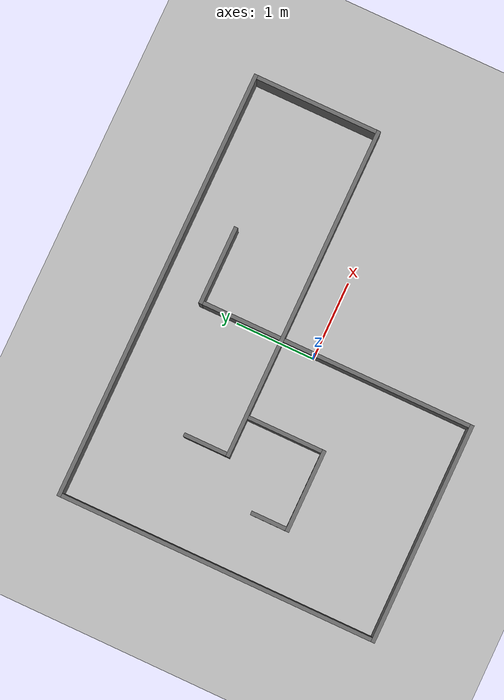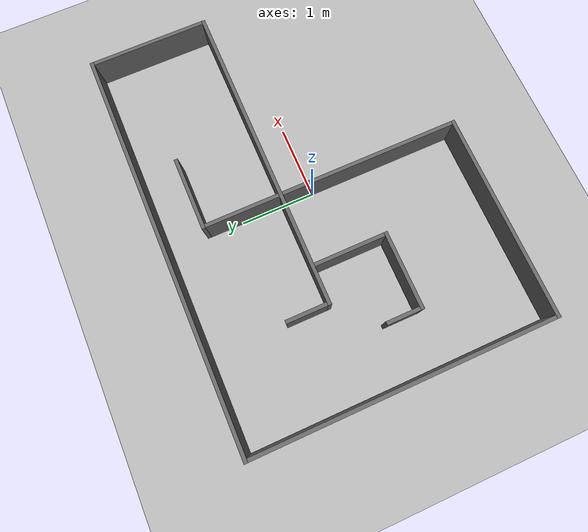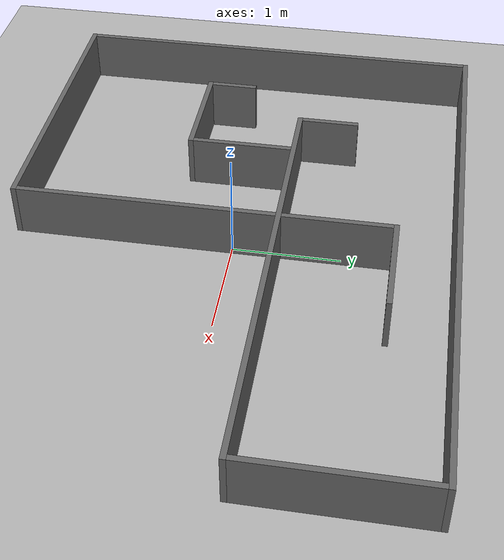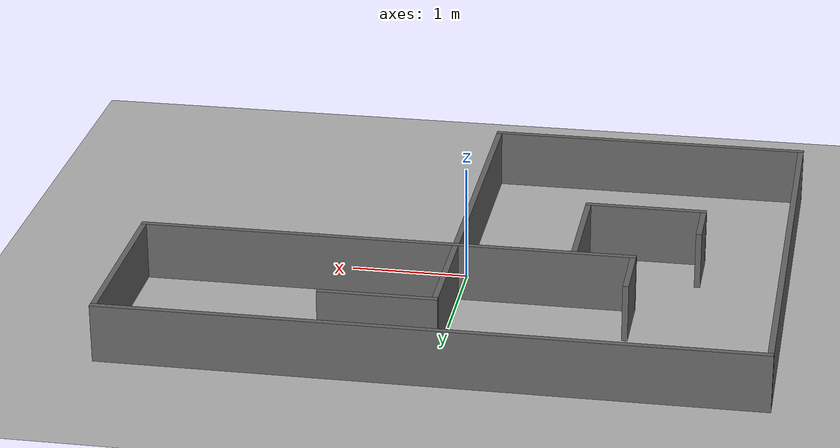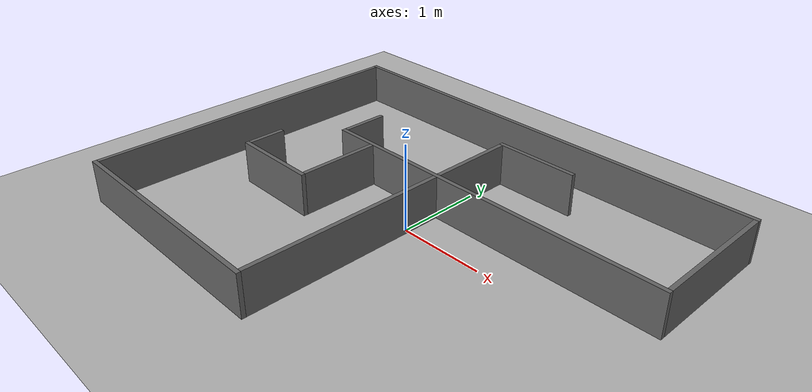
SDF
<?xml version="1.0" ?>
<sdf version="1.6">
  <world name="my_map_world">
    <plugin name="gazebo_ros_state" filename="libgazebo_ros_state.so"/>
    <physics type="ode">
      <real_time_update_rate>1000</real_time_update_rate>
      <max_step_size>0.001</max_step_size>
    </physics>
    <scene>
      <ambient>0.4 0.4 0.4 1</ambient>
      <background>0.7 0.7 0.7 1</background>
      <shadows>true</shadows>
    </scene>
    <light name="sun" type="directional">
      <pose>0 0 10 0 0 0</pose>
      <diffuse>0.8 0.8 0.8 1</diffuse>
      <direction>0.1 0.1 -1</direction>
      <cast_shadows>true</cast_shadows>
    </light>
    <model name="ground_plane">
      <static>true</static>
      <link name="link">
        <collision name="collision">
          <geometry>
            <plane>
              <normal>0 0 1</normal>
              <size>20 20</size>
            </plane>
          </geometry>

          <surface>
            <friction>
              <ode>
                <mu>10.0</mu>
                <mu2>10.0</mu2>
                <fdir1>1 0 0</fdir1>
              </ode>
            </friction>
            <contact>
              <ode>
                <kp>1000000.0</kp>
                <kd>10.0</kd>
                <max_vel>0.1</max_vel>
                <min_depth>0.001</min_depth>
              </ode>
            </contact>
          </surface>
        </collision>
        <visual name="visual">
          <geometry><plane><normal>0 0 1</normal><size>20 20</size></plane></geometry>
          <material><ambient>0.5 0.5 0.5 1</ambient><diffuse>0.7 0.7 0.7 1</diffuse></material>
        </visual>
      </link>
    </model>
    <model name="wall_0">
      <static>true</static>
      <pose>0.000000 2.025000 0.250000 0 0 0</pose>
      <link name="link">
        <collision name="collision">
          <geometry><box><size>5.500000 0.050000 0.500000</size></box></geometry>
        </collision>
        <visual name="visual">
          <geometry><box><size>5.500000 0.050000 0.500000</size></box></geometry>
          <material><ambient>0.2 0.2 0.2 1</ambient><diffuse>0.4 0.4 0.4 1</diffuse></material>
        </visual>
      </link>
    </model>
    <model name="wall_1">
      <static>true</static>
      <pose>-2.725000 -0.000000 0.250000 0 0 0</pose>
      <link name="link">
        <collision name="collision">
          <geometry><box><size>0.050000 4.000000 0.500000</size></box></geometry>
        </collision>
        <visual name="visual">
          <geometry><box><size>0.050000 4.000000 0.500000</size></box></geometry>
          <material><ambient>0.2 0.2 0.2 1</ambient><diffuse>0.4 0.4 0.4 1</diffuse></material>
        </visual>
      </link>
    </model>
    <model name="wall_2">
      <static>true</static>
      <pose>2.725000 1.225000 0.250000 0 0 0</pose>
      <link name="link">
        <collision name="collision">
          <geometry><box><size>0.050000 1.550000 0.500000</size></box></geometry>
        </collision>
        <visual name="visual">
          <geometry><box><size>0.050000 1.550000 0.500000</size></box></geometry>
          <material><ambient>0.2 0.2 0.2 1</ambient><diffuse>0.4 0.4 0.4 1</diffuse></material>
        </visual>
      </link>
    </model>
    <model name="wall_3">
      <static>true</static>
      <pose>0.500000 1.475000 0.250000 0 0 0</pose>
      <link name="link">
        <collision name="collision">
          <geometry><box><size>1.000000 0.050000 0.500000</size></box></geometry>
        </collision>
        <visual name="visual">
          <geometry><box><size>1.000000 0.050000 0.500000</size></box></geometry>
          <material><ambient>0.2 0.2 0.2 1</ambient><diffuse>0.4 0.4 0.4 1</diffuse></material>
        </visual>
      </link>
    </model>
    <model name="wall_4">
      <static>true</static>
      <pose>0.025000 0.950000 0.250000 0 0 0</pose>
      <link name="link">
        <collision name="collision">
          <geometry><box><size>0.050000 1.000000 0.500000</size></box></geometry>
        </collision>
        <visual name="visual">
          <geometry><box><size>0.050000 1.000000 0.500000</size></box></geometry>
          <material><ambient>0.2 0.2 0.2 1</ambient><diffuse>0.4 0.4 0.4 1</diffuse></material>
        </visual>
      </link>
    </model>
    <model name="wall_5">
      <static>true</static>
      <pose>-1.475000 0.725000 0.250000 0 0 0</pose>
      <link name="link">
        <collision name="collision">
          <geometry><box><size>0.050000 0.550000 0.500000</size></box></geometry>
        </collision>
        <visual name="visual">
          <geometry><box><size>0.050000 0.550000 0.500000</size></box></geometry>
          <material><ambient>0.2 0.2 0.2 1</ambient><diffuse>0.4 0.4 0.4 1</diffuse></material>
        </visual>
      </link>
    </model>
    <model name="wall_6">
      <static>true</static>
      <pose>0.625000 0.425000 0.250000 0 0 0</pose>
      <link name="link">
        <collision name="collision">
          <geometry><box><size>4.250000 0.050000 0.500000</size></box></geometry>
        </collision>
        <visual name="visual">
          <geometry><box><size>4.250000 0.050000 0.500000</size></box></geometry>
          <material><ambient>0.2 0.2 0.2 1</ambient><diffuse>0.4 0.4 0.4 1</diffuse></material>
        </visual>
      </link>
    </model>
    <model name="wall_7">
      <static>true</static>
      <pose>-0.975000 -0.075000 0.250000 0 0 0</pose>
      <link name="link">
        <collision name="collision">
          <geometry><box><size>0.050000 0.950000 0.500000</size></box></geometry>
        </collision>
        <visual name="visual">
          <geometry><box><size>0.050000 0.950000 0.500000</size></box></geometry>
          <material><ambient>0.2 0.2 0.2 1</ambient><diffuse>0.4 0.4 0.4 1</diffuse></material>
        </visual>
      </link>
    </model>
    <model name="wall_8">
      <static>true</static>
      <pose>0.025000 -0.800000 0.250000 0 0 0</pose>
      <link name="link">
        <collision name="collision">
          <geometry><box><size>0.050000 2.400000 0.500000</size></box></geometry>
        </collision>
        <visual name="visual">
          <geometry><box><size>0.050000 2.400000 0.500000</size></box></geometry>
          <material><ambient>0.2 0.2 0.2 1</ambient><diffuse>0.4 0.4 0.4 1</diffuse></material>
        </visual>
      </link>
    </model>
    <model name="wall_9">
      <static>true</static>
      <pose>-1.975000 -0.325000 0.250000 0 0 0</pose>
      <link name="link">
        <collision name="collision">
          <geometry><box><size>0.050000 0.450000 0.500000</size></box></geometry>
        </collision>
        <visual name="visual">
          <geometry><box><size>0.050000 0.450000 0.500000</size></box></geometry>
          <material><ambient>0.2 0.2 0.2 1</ambient><diffuse>0.4 0.4 0.4 1</diffuse></material>
        </visual>
      </link>
    </model>
    <model name="wall_10">
      <static>true</static>
      <pose>-1.475000 -0.575000 0.250000 0 0 0</pose>
      <link name="link">
        <collision name="collision">
          <geometry><box><size>1.050000 0.050000 0.500000</size></box></geometry>
        </collision>
        <visual name="visual">
          <geometry><box><size>1.050000 0.050000 0.500000</size></box></geometry>
          <material><ambient>0.2 0.2 0.2 1</ambient><diffuse>0.4 0.4 0.4 1</diffuse></material>
        </visual>
      </link>
    </model>
    <model name="wall_11">
      <static>true</static>
      <pose>-1.350000 -2.025000 0.250000 0 0 0</pose>
      <link name="link">
        <collision name="collision">
          <geometry><box><size>2.800000 0.050000 0.500000</size></box></geometry>
        </collision>
        <visual name="visual">
          <geometry><box><size>2.800000 0.050000 0.500000</size></box></geometry>
          <material><ambient>0.2 0.2 0.2 1</ambient><diffuse>0.4 0.4 0.4 1</diffuse></material>
        </visual>
      </link>
    </model>
  </world>
</sdf>
